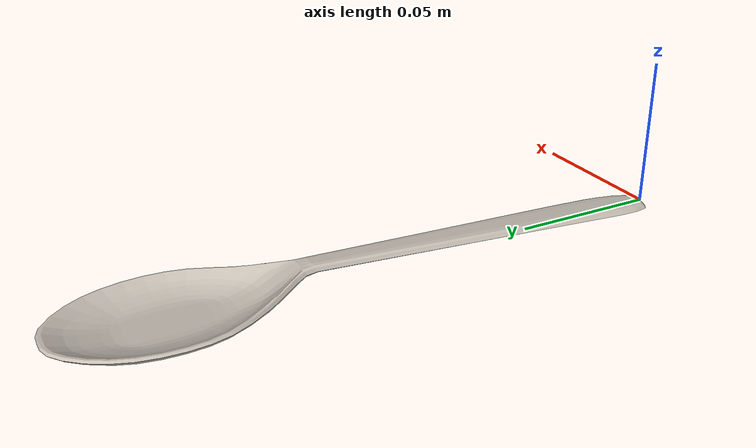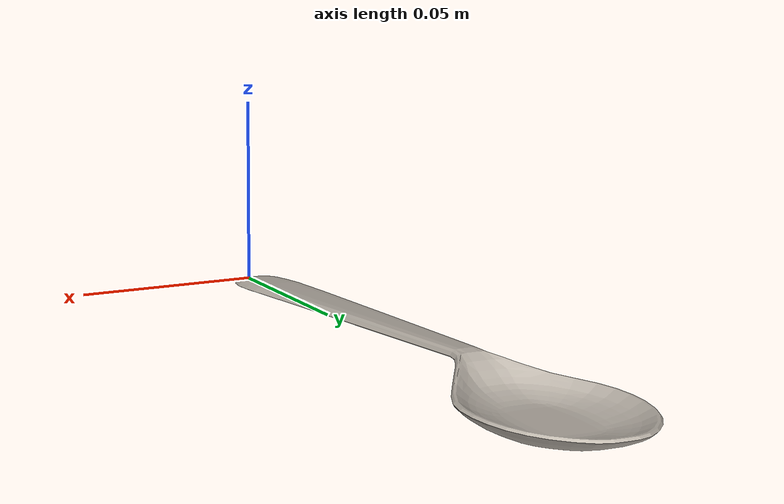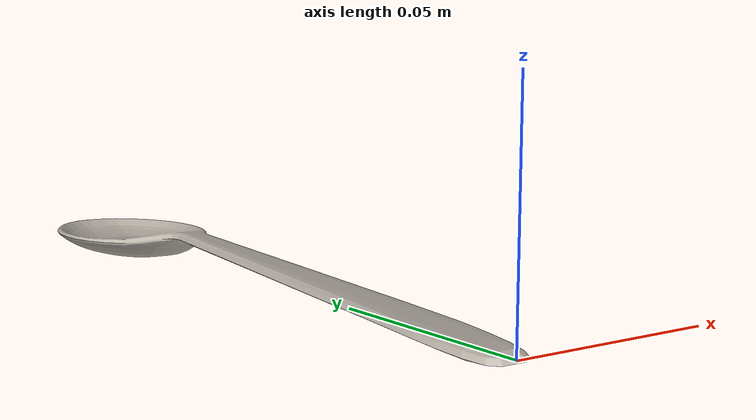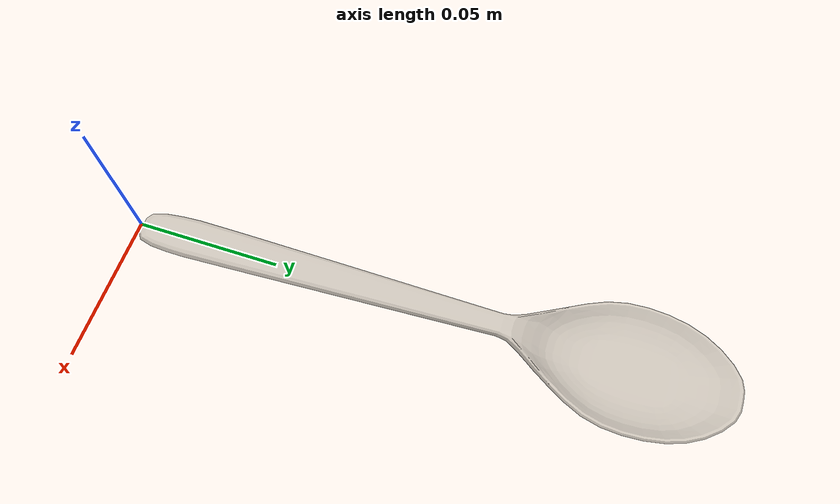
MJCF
<mujoco model="spoon">
    <asset>
        <mesh file="meshes/uploads_files_5958919_Spoon.obj" name="spoon_mesh" scale="0.025 0.025 0.025"/>
        <texture type="2d" file="textures/ceramic.png" name="tex-glass"/>
        <material name="glass" reflectance="0.5" texrepeat="5 5" texture="tex-glass" texuniform="true"/>
    </asset>
    <worldbody>
        <body name="object">

            <geom pos="0 0 0" mesh="spoon_mesh" type="mesh" euler="0 0 0" solimp="0.988 0.988 0.001" solref="0.001 1" density="100"
                  friction="0.95 0.3 0.1" material="glass" group="0" condim="4"/>

        </body>
    </worldbody>

</mujoco>
